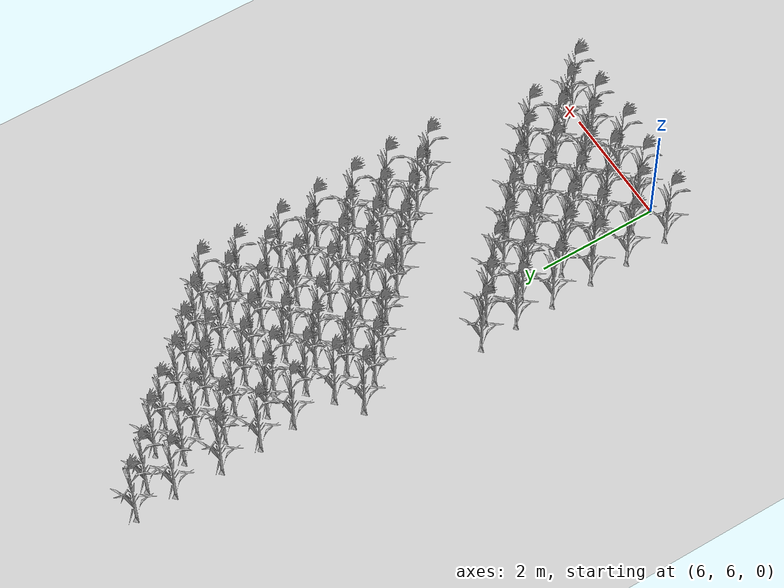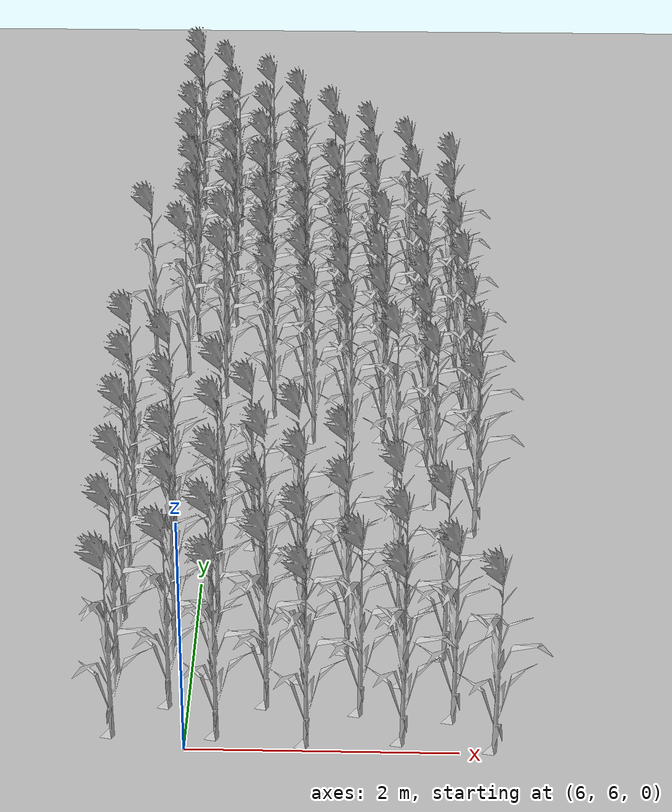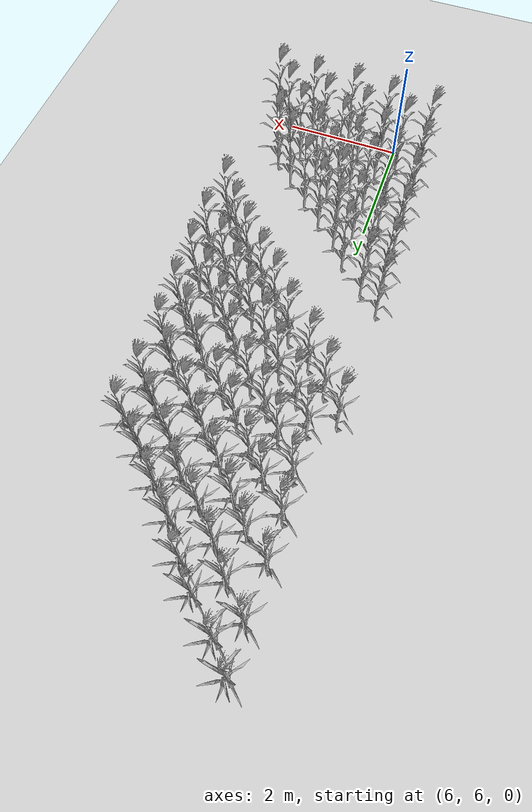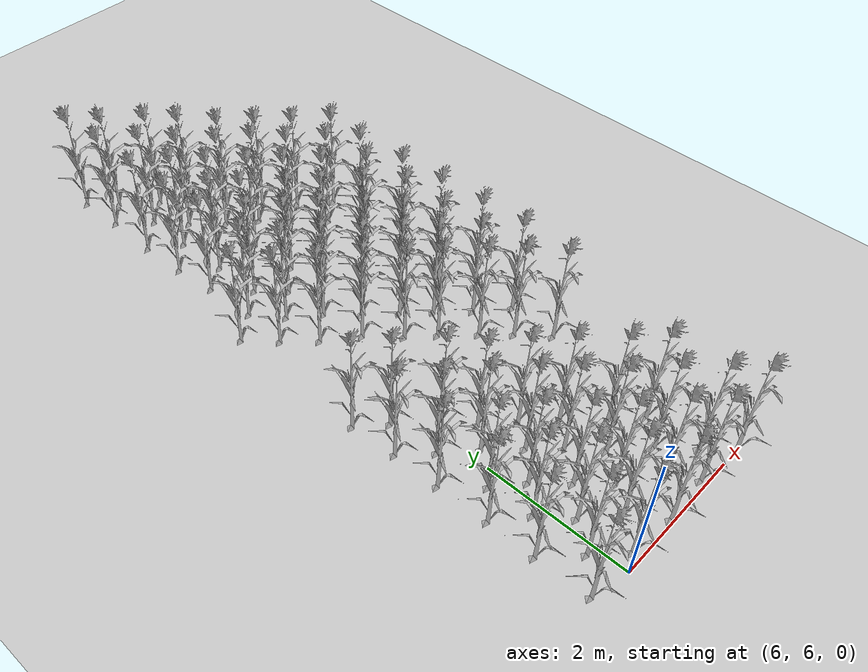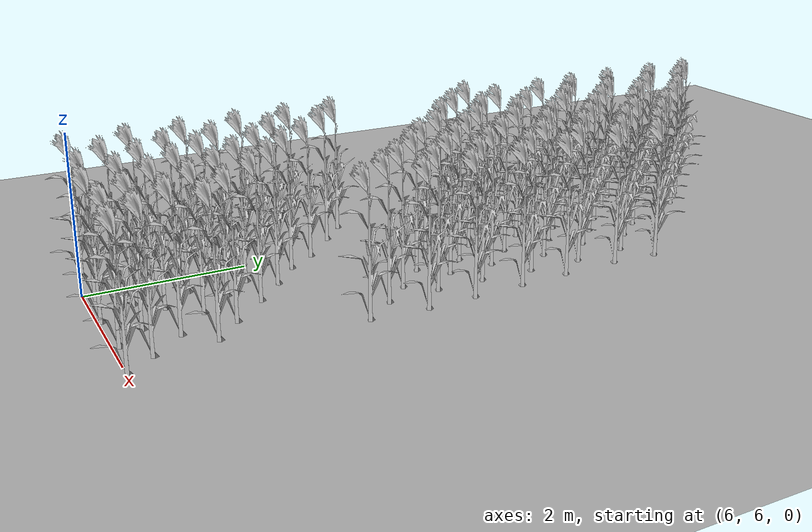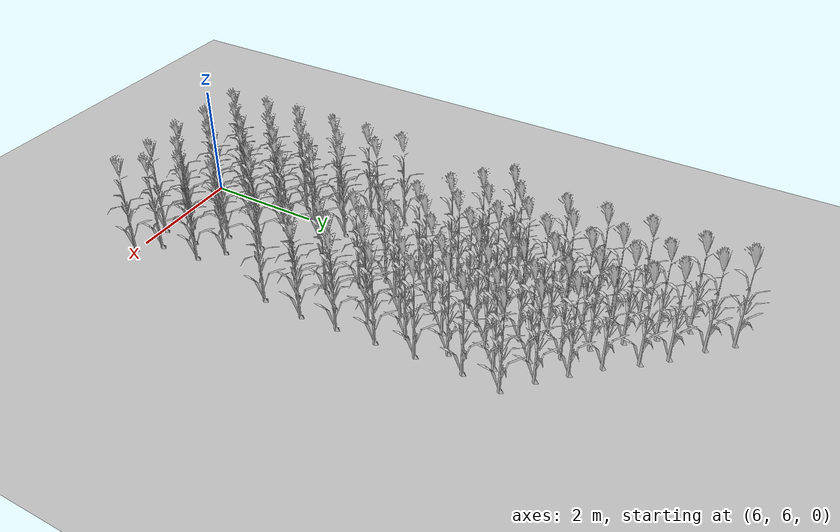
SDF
<sdf version="1.7">
 <world name="farmland_world">
  <model name="ground_plane">
   <static>1</static>
   <link name="link">
    <collision name="collision">
     <geometry><plane><normal>0 0 1</normal><size>40.0 40.0</size></plane></geometry>
     <surface><friction><ode><mu>100</mu><mu2>50</mu2></ode></friction></surface>
    </collision>
    <visual name="visual">
     <cast_shadows>0</cast_shadows>
     <geometry><plane><normal>0 0 1</normal><size>40.0 40.0</size></plane></geometry>
     <material>
      <script><uri>file://media/materials/scripts/gazebo.material</uri><name>Gazebo/Grey</name></script>
     </material>
    </visual>
   </link>
  </model>
  <model name="tree_3_355">
   <static>1</static>
   <link name="link">
    <collision name="collision">
     <geometry><mesh><uri>model://Corn_low_poly/corn.obj</uri><scale>1 1 1</scale></mesh></geometry>
     <surface><friction><ode><mu>100</mu><mu2>50</mu2></ode></friction></surface>
    </collision>
    <visual name="visual">
     <geometry><mesh><uri>model://Corn_low_poly/corn.obj</uri><scale>1 1 1</scale></mesh></geometry>
    </visual>
   </link>
   <pose>5.471694476453134 6.14355380450769 0 0 0 0</pose>
  </model>
  <model name="tree_3_399">
   <static>1</static>
   <link name="link">
    <collision name="collision">
     <geometry><mesh><uri>model://Corn_low_poly/corn.obj</uri><scale>1 1 1</scale></mesh></geometry>
     <surface><friction><ode><mu>100</mu><mu2>50</mu2></ode></friction></surface>
    </collision>
    <visual name="visual">
     <geometry><mesh><uri>model://Corn_low_poly/corn.obj</uri><scale>1 1 1</scale></mesh></geometry>
    </visual>
   </link>
   <pose>6.235995083051954 6.136987099620361 0 0 0 0</pose>
  </model>
  <model name="tree_3_400">
   <static>1</static>
   <link name="link">
    <collision name="collision">
     <geometry><mesh><uri>model://Corn_low_poly/corn.obj</uri><scale>1 1 1</scale></mesh></geometry>
     <surface><friction><ode><mu>100</mu><mu2>50</mu2></ode></friction></surface>
    </collision>
    <visual name="visual">
     <geometry><mesh><uri>model://Corn_low_poly/corn.obj</uri><scale>1 1 1</scale></mesh></geometry>
    </visual>
   </link>
   <pose>5.865005766384051 6.483302740162378 0 0 0 0</pose>
  </model>
  <model name="tree_3_401">
   <static>1</static>
   <link name="link">
    <collision name="collision">
     <geometry><mesh><uri>model://Corn_low_poly/corn.obj</uri><scale>1 1 1</scale></mesh></geometry>
     <surface><friction><ode><mu>100</mu><mu2>50</mu2></ode></friction></surface>
    </collision>
    <visual name="visual">
     <geometry><mesh><uri>model://Corn_low_poly/corn.obj</uri><scale>1 1 1</scale></mesh></geometry>
    </visual>
   </link>
   <pose>5.439554193803803 6.883054392395736 0 0 0 0</pose>
  </model>
  <model name="tree_3_443">
   <static>1</static>
   <link name="link">
    <collision name="collision">
     <geometry><mesh><uri>model://Corn_low_poly/corn.obj</uri><scale>1 1 1</scale></mesh></geometry>
     <surface><friction><ode><mu>100</mu><mu2>50</mu2></ode></friction></surface>
    </collision>
    <visual name="visual">
     <geometry><mesh><uri>model://Corn_low_poly/corn.obj</uri><scale>1 1 1</scale></mesh></geometry>
    </visual>
   </link>
   <pose>6.89482334576149 6.05714807103807 0 0 0 0</pose>
  </model>
  <model name="tree_3_444">
   <static>1</static>
   <link name="link">
    <collision name="collision">
     <geometry><mesh><uri>model://Corn_low_poly/corn.obj</uri><scale>1 1 1</scale></mesh></geometry>
     <surface><friction><ode><mu>100</mu><mu2>50</mu2></ode></friction></surface>
    </collision>
    <visual name="visual">
     <geometry><mesh><uri>model://Corn_low_poly/corn.obj</uri><scale>1 1 1</scale></mesh></geometry>
    </visual>
   </link>
   <pose>6.590228211085684 6.492187985608094 0 0 0 0</pose>
  </model>
  <model name="tree_3_445">
   <static>1</static>
   <link name="link">
    <collision name="collision">
     <geometry><mesh><uri>model://Corn_low_poly/corn.obj</uri><scale>1 1 1</scale></mesh></geometry>
     <surface><friction><ode><mu>100</mu><mu2>50</mu2></ode></friction></surface>
    </collision>
    <visual name="visual">
     <geometry><mesh><uri>model://Corn_low_poly/corn.obj</uri><scale>1 1 1</scale></mesh></geometry>
    </visual>
   </link>
   <pose>6.163290914897443 6.837217003719001 0 0 0 0</pose>
  </model>
  <model name="tree_3_446">
   <static>1</static>
   <link name="link">
    <collision name="collision">
     <geometry><mesh><uri>model://Corn_low_poly/corn.obj</uri><scale>1 1 1</scale></mesh></geometry>
     <surface><friction><ode><mu>100</mu><mu2>50</mu2></ode></friction></surface>
    </collision>
    <visual name="visual">
     <geometry><mesh><uri>model://Corn_low_poly/corn.obj</uri><scale>1 1 1</scale></mesh></geometry>
    </visual>
   </link>
   <pose>5.8521127208860815 7.230890663182897 0 0 0 0</pose>
  </model>
  <model name="tree_3_447">
   <static>1</static>
   <link name="link">
    <collision name="collision">
     <geometry><mesh><uri>model://Corn_low_poly/corn.obj</uri><scale>1 1 1</scale></mesh></geometry>
     <surface><friction><ode><mu>100</mu><mu2>50</mu2></ode></friction></surface>
    </collision>
    <visual name="visual">
     <geometry><mesh><uri>model://Corn_low_poly/corn.obj</uri><scale>1 1 1</scale></mesh></geometry>
    </visual>
   </link>
   <pose>5.432848859383742 7.550476239726102 0 0 0 0</pose>
  </model>
  <model name="tree_3_487">
   <static>1</static>
   <link name="link">
    <collision name="collision">
     <geometry><mesh><uri>model://Corn_low_poly/corn.obj</uri><scale>1 1 1</scale></mesh></geometry>
     <surface><friction><ode><mu>100</mu><mu2>50</mu2></ode></friction></surface>
    </collision>
    <visual name="visual">
     <geometry><mesh><uri>model://Corn_low_poly/corn.obj</uri><scale>1 1 1</scale></mesh></geometry>
    </visual>
   </link>
   <pose>7.594508371308746 6.0977253387361845 0 0 0 0</pose>
  </model>
  <model name="tree_3_488">
   <static>1</static>
   <link name="link">
    <collision name="collision">
     <geometry><mesh><uri>model://Corn_low_poly/corn.obj</uri><scale>1 1 1</scale></mesh></geometry>
     <surface><friction><ode><mu>100</mu><mu2>50</mu2></ode></friction></surface>
    </collision>
    <visual name="visual">
     <geometry><mesh><uri>model://Corn_low_poly/corn.obj</uri><scale>1 1 1</scale></mesh></geometry>
    </visual>
   </link>
   <pose>7.285591513165127 6.420399076129531 0 0 0 0</pose>
  </model>
  <model name="tree_3_489">
   <static>1</static>
   <link name="link">
    <collision name="collision">
     <geometry><mesh><uri>model://Corn_low_poly/corn.obj</uri><scale>1 1 1</scale></mesh></geometry>
     <surface><friction><ode><mu>100</mu><mu2>50</mu2></ode></friction></surface>
    </collision>
    <visual name="visual">
     <geometry><mesh><uri>model://Corn_low_poly/corn.obj</uri><scale>1 1 1</scale></mesh></geometry>
    </visual>
   </link>
   <pose>6.857310512107202 6.792035577497284 0 0 0 0</pose>
  </model>
  <model name="tree_3_490">
   <static>1</static>
   <link name="link">
    <collision name="collision">
     <geometry><mesh><uri>model://Corn_low_poly/corn.obj</uri><scale>1 1 1</scale></mesh></geometry>
     <surface><friction><ode><mu>100</mu><mu2>50</mu2></ode></friction></surface>
    </collision>
    <visual name="visual">
     <geometry><mesh><uri>model://Corn_low_poly/corn.obj</uri><scale>1 1 1</scale></mesh></geometry>
    </visual>
   </link>
   <pose>6.52730941569315 7.155594912537985 0 0 0 0</pose>
  </model>
  <model name="tree_3_491">
   <static>1</static>
   <link name="link">
    <collision name="collision">
     <geometry><mesh><uri>model://Corn_low_poly/corn.obj</uri><scale>1 1 1</scale></mesh></geometry>
     <surface><friction><ode><mu>100</mu><mu2>50</mu2></ode></friction></surface>
    </collision>
    <visual name="visual">
     <geometry><mesh><uri>model://Corn_low_poly/corn.obj</uri><scale>1 1 1</scale></mesh></geometry>
    </visual>
   </link>
   <pose>6.170079203827628 7.544089877313549 0 0 0 0</pose>
  </model>
  <model name="tree_3_492">
   <static>1</static>
   <link name="link">
    <collision name="collision">
     <geometry><mesh><uri>model://Corn_low_poly/corn.obj</uri><scale>1 1 1</scale></mesh></geometry>
     <surface><friction><ode><mu>100</mu><mu2>50</mu2></ode></friction></surface>
    </collision>
    <visual name="visual">
     <geometry><mesh><uri>model://Corn_low_poly/corn.obj</uri><scale>1 1 1</scale></mesh></geometry>
    </visual>
   </link>
   <pose>5.798276590131924 7.841730784865423 0 0 0 0</pose>
  </model>
  <model name="tree_3_493">
   <static>1</static>
   <link name="link">
    <collision name="collision">
     <geometry><mesh><uri>model://Corn_low_poly/corn.obj</uri><scale>1 1 1</scale></mesh></geometry>
     <surface><friction><ode><mu>100</mu><mu2>50</mu2></ode></friction></surface>
    </collision>
    <visual name="visual">
     <geometry><mesh><uri>model://Corn_low_poly/corn.obj</uri><scale>1 1 1</scale></mesh></geometry>
    </visual>
   </link>
   <pose>5.400741873745754 8.277862308821367 0 0 0 0</pose>
  </model>
  <model name="tree_3_531">
   <static>1</static>
   <link name="link">
    <collision name="collision">
     <geometry><mesh><uri>model://Corn_low_poly/corn.obj</uri><scale>1 1 1</scale></mesh></geometry>
     <surface><friction><ode><mu>100</mu><mu2>50</mu2></ode></friction></surface>
    </collision>
    <visual name="visual">
     <geometry><mesh><uri>model://Corn_low_poly/corn.obj</uri><scale>1 1 1</scale></mesh></geometry>
    </visual>
   </link>
   <pose>8.263007438001093 6.024265239351166 0 0 0 0</pose>
  </model>
  <model name="tree_3_532">
   <static>1</static>
   <link name="link">
    <collision name="collision">
     <geometry><mesh><uri>model://Corn_low_poly/corn.obj</uri><scale>1 1 1</scale></mesh></geometry>
     <surface><friction><ode><mu>100</mu><mu2>50</mu2></ode></friction></surface>
    </collision>
    <visual name="visual">
     <geometry><mesh><uri>model://Corn_low_poly/corn.obj</uri><scale>1 1 1</scale></mesh></geometry>
    </visual>
   </link>
   <pose>7.975446138098593 6.35846957469367 0 0 0 0</pose>
  </model>
  <model name="tree_3_533">
   <static>1</static>
   <link name="link">
    <collision name="collision">
     <geometry><mesh><uri>model://Corn_low_poly/corn.obj</uri><scale>1 1 1</scale></mesh></geometry>
     <surface><friction><ode><mu>100</mu><mu2>50</mu2></ode></friction></surface>
    </collision>
    <visual name="visual">
     <geometry><mesh><uri>model://Corn_low_poly/corn.obj</uri><scale>1 1 1</scale></mesh></geometry>
    </visual>
   </link>
   <pose>7.6143051767600145 6.760402152950665 0 0 0 0</pose>
  </model>
  <model name="tree_3_534">
   <static>1</static>
   <link name="link">
    <collision name="collision">
     <geometry><mesh><uri>model://Corn_low_poly/corn.obj</uri><scale>1 1 1</scale></mesh></geometry>
     <surface><friction><ode><mu>100</mu><mu2>50</mu2></ode></friction></surface>
    </collision>
    <visual name="visual">
     <geometry><mesh><uri>model://Corn_low_poly/corn.obj</uri><scale>1 1 1</scale></mesh></geometry>
    </visual>
   </link>
   <pose>7.182612932854334 7.148068096172713 0 0 0 0</pose>
  </model>
  <model name="tree_3_535">
   <static>1</static>
   <link name="link">
    <collision name="collision">
     <geometry><mesh><uri>model://Corn_low_poly/corn.obj</uri><scale>1 1 1</scale></mesh></geometry>
     <surface><friction><ode><mu>100</mu><mu2>50</mu2></ode></friction></surface>
    </collision>
    <visual name="visual">
     <geometry><mesh><uri>model://Corn_low_poly/corn.obj</uri><scale>1 1 1</scale></mesh></geometry>
    </visual>
   </link>
   <pose>6.844057753489847 7.531820341324307 0 0 0 0</pose>
  </model>
  <model name="tree_3_536">
   <static>1</static>
   <link name="link">
    <collision name="collision">
     <geometry><mesh><uri>model://Corn_low_poly/corn.obj</uri><scale>1 1 1</scale></mesh></geometry>
     <surface><friction><ode><mu>100</mu><mu2>50</mu2></ode></friction></surface>
    </collision>
    <visual name="visual">
     <geometry><mesh><uri>model://Corn_low_poly/corn.obj</uri><scale>1 1 1</scale></mesh></geometry>
    </visual>
   </link>
   <pose>6.533425087771486 7.869975667730941 0 0 0 0</pose>
  </model>
  <model name="tree_3_537">
   <static>1</static>
   <link name="link">
    <collision name="collision">
     <geometry><mesh><uri>model://Corn_low_poly/corn.obj</uri><scale>1 1 1</scale></mesh></geometry>
     <surface><friction><ode><mu>100</mu><mu2>50</mu2></ode></friction></surface>
    </collision>
    <visual name="visual">
     <geometry><mesh><uri>model://Corn_low_poly/corn.obj</uri><scale>1 1 1</scale></mesh></geometry>
    </visual>
   </link>
   <pose>6.148371712868487 8.248745050336604 0 0 0 0</pose>
  </model>
  <model name="tree_3_538">
   <static>1</static>
   <link name="link">
    <collision name="collision">
     <geometry><mesh><uri>model://Corn_low_poly/corn.obj</uri><scale>1 1 1</scale></mesh></geometry>
     <surface><friction><ode><mu>100</mu><mu2>50</mu2></ode></friction></surface>
    </collision>
    <visual name="visual">
     <geometry><mesh><uri>model://Corn_low_poly/corn.obj</uri><scale>1 1 1</scale></mesh></geometry>
    </visual>
   </link>
   <pose>5.751576541310999 8.600007839398152 0 0 0 0</pose>
  </model>
  <model name="tree_3_539">
   <static>1</static>
   <link name="link">
    <collision name="collision">
     <geometry><mesh><uri>model://Corn_low_poly/corn.obj</uri><scale>1 1 1</scale></mesh></geometry>
     <surface><friction><ode><mu>100</mu><mu2>50</mu2></ode></friction></surface>
    </collision>
    <visual name="visual">
     <geometry><mesh><uri>model://Corn_low_poly/corn.obj</uri><scale>1 1 1</scale></mesh></geometry>
    </visual>
   </link>
   <pose>5.384534908041113 8.945540544869322 0 0 0 0</pose>
  </model>
  <model name="tree_3_578">
   <static>1</static>
   <link name="link">
    <collision name="collision">
     <geometry><mesh><uri>model://Corn_low_poly/corn.obj</uri><scale>1 1 1</scale></mesh></geometry>
     <surface><friction><ode><mu>100</mu><mu2>50</mu2></ode></friction></surface>
    </collision>
    <visual name="visual">
     <geometry><mesh><uri>model://Corn_low_poly/corn.obj</uri><scale>1 1 1</scale></mesh></geometry>
    </visual>
   </link>
   <pose>7.9303297653372615 7.086207382358964 0 0 0 0</pose>
  </model>
  <model name="tree_3_579">
   <static>1</static>
   <link name="link">
    <collision name="collision">
     <geometry><mesh><uri>model://Corn_low_poly/corn.obj</uri><scale>1 1 1</scale></mesh></geometry>
     <surface><friction><ode><mu>100</mu><mu2>50</mu2></ode></friction></surface>
    </collision>
    <visual name="visual">
     <geometry><mesh><uri>model://Corn_low_poly/corn.obj</uri><scale>1 1 1</scale></mesh></geometry>
    </visual>
   </link>
   <pose>7.580579248094901 7.405266585083556 0 0 0 0</pose>
  </model>
  <model name="tree_3_580">
   <static>1</static>
   <link name="link">
    <collision name="collision">
     <geometry><mesh><uri>model://Corn_low_poly/corn.obj</uri><scale>1 1 1</scale></mesh></geometry>
     <surface><friction><ode><mu>100</mu><mu2>50</mu2></ode></friction></surface>
    </collision>
    <visual name="visual">
     <geometry><mesh><uri>model://Corn_low_poly/corn.obj</uri><scale>1 1 1</scale></mesh></geometry>
    </visual>
   </link>
   <pose>7.163872858023404 7.838276291657725 0 0 0 0</pose>
  </model>
  <model name="tree_3_581">
   <static>1</static>
   <link name="link">
    <collision name="collision">
     <geometry><mesh><uri>model://Corn_low_poly/corn.obj</uri><scale>1 1 1</scale></mesh></geometry>
     <surface><friction><ode><mu>100</mu><mu2>50</mu2></ode></friction></surface>
    </collision>
    <visual name="visual">
     <geometry><mesh><uri>model://Corn_low_poly/corn.obj</uri><scale>1 1 1</scale></mesh></geometry>
    </visual>
   </link>
   <pose>6.789975333410983 8.18729885335023 0 0 0 0</pose>
  </model>
  <model name="tree_3_582">
   <static>1</static>
   <link name="link">
    <collision name="collision">
     <geometry><mesh><uri>model://Corn_low_poly/corn.obj</uri><scale>1 1 1</scale></mesh></geometry>
     <surface><friction><ode><mu>100</mu><mu2>50</mu2></ode></friction></surface>
    </collision>
    <visual name="visual">
     <geometry><mesh><uri>model://Corn_low_poly/corn.obj</uri><scale>1 1 1</scale></mesh></geometry>
    </visual>
   </link>
   <pose>6.407608446807056 8.51307476225201 0 0 0 0</pose>
  </model>
  <model name="tree_3_583">
   <static>1</static>
   <link name="link">
    <collision name="collision">
     <geometry><mesh><uri>model://Corn_low_poly/corn.obj</uri><scale>1 1 1</scale></mesh></geometry>
     <surface><friction><ode><mu>100</mu><mu2>50</mu2></ode></friction></surface>
    </collision>
    <visual name="visual">
     <geometry><mesh><uri>model://Corn_low_poly/corn.obj</uri><scale>1 1 1</scale></mesh></geometry>
    </visual>
   </link>
   <pose>6.1387058412705775 8.88055569010794 0 0 0 0</pose>
  </model>
  <model name="tree_3_584">
   <static>1</static>
   <link name="link">
    <collision name="collision">
     <geometry><mesh><uri>model://Corn_low_poly/corn.obj</uri><scale>1 1 1</scale></mesh></geometry>
     <surface><friction><ode><mu>100</mu><mu2>50</mu2></ode></friction></surface>
    </collision>
    <visual name="visual">
     <geometry><mesh><uri>model://Corn_low_poly/corn.obj</uri><scale>1 1 1</scale></mesh></geometry>
    </visual>
   </link>
   <pose>5.685108797447802 9.301583182413548 0 0 0 0</pose>
  </model>
  <model name="tree_3_585">
   <static>1</static>
   <link name="link">
    <collision name="collision">
     <geometry><mesh><uri>model://Corn_low_poly/corn.obj</uri><scale>1 1 1</scale></mesh></geometry>
     <surface><friction><ode><mu>100</mu><mu2>50</mu2></ode></friction></surface>
    </collision>
    <visual name="visual">
     <geometry><mesh><uri>model://Corn_low_poly/corn.obj</uri><scale>1 1 1</scale></mesh></geometry>
    </visual>
   </link>
   <pose>5.33450652721712 9.6081968097884 0 0 0 0</pose>
  </model>
  <model name="tree_3_633">
   <static>1</static>
   <link name="link">
    <collision name="collision">
     <geometry><mesh><uri>model://Corn_low_poly/corn.obj</uri><scale>1 1 1</scale></mesh></geometry>
     <surface><friction><ode><mu>100</mu><mu2>50</mu2></ode></friction></surface>
    </collision>
    <visual name="visual">
     <geometry><mesh><uri>model://Corn_low_poly/corn.obj</uri><scale>1 1 1</scale></mesh></geometry>
    </visual>
   </link>
   <pose>8.232710485984626 8.737491411018663 0 0 0 0</pose>
  </model>
  <model name="tree_3_634">
   <static>1</static>
   <link name="link">
    <collision name="collision">
     <geometry><mesh><uri>model://Corn_low_poly/corn.obj</uri><scale>1 1 1</scale></mesh></geometry>
     <surface><friction><ode><mu>100</mu><mu2>50</mu2></ode></friction></surface>
    </collision>
    <visual name="visual">
     <geometry><mesh><uri>model://Corn_low_poly/corn.obj</uri><scale>1 1 1</scale></mesh></geometry>
    </visual>
   </link>
   <pose>7.90488833929743 9.134743534265912 0 0 0 0</pose>
  </model>
  <model name="tree_3_635">
   <static>1</static>
   <link name="link">
    <collision name="collision">
     <geometry><mesh><uri>model://Corn_low_poly/corn.obj</uri><scale>1 1 1</scale></mesh></geometry>
     <surface><friction><ode><mu>100</mu><mu2>50</mu2></ode></friction></surface>
    </collision>
    <visual name="visual">
     <geometry><mesh><uri>model://Corn_low_poly/corn.obj</uri><scale>1 1 1</scale></mesh></geometry>
    </visual>
   </link>
   <pose>7.586002379757005 9.475021441311359 0 0 0 0</pose>
  </model>
  <model name="tree_3_636">
   <static>1</static>
   <link name="link">
    <collision name="collision">
     <geometry><mesh><uri>model://Corn_low_poly/corn.obj</uri><scale>1 1 1</scale></mesh></geometry>
     <surface><friction><ode><mu>100</mu><mu2>50</mu2></ode></friction></surface>
    </collision>
    <visual name="visual">
     <geometry><mesh><uri>model://Corn_low_poly/corn.obj</uri><scale>1 1 1</scale></mesh></geometry>
    </visual>
   </link>
   <pose>7.1982926108926675 9.859354686523965 0 0 0 0</pose>
  </model>
  <model name="tree_3_637">
   <static>1</static>
   <link name="link">
    <collision name="collision">
     <geometry><mesh><uri>model://Corn_low_poly/corn.obj</uri><scale>1 1 1</scale></mesh></geometry>
     <surface><friction><ode><mu>100</mu><mu2>50</mu2></ode></friction></surface>
    </collision>
    <visual name="visual">
     <geometry><mesh><uri>model://Corn_low_poly/corn.obj</uri><scale>1 1 1</scale></mesh></geometry>
    </visual>
   </link>
   <pose>6.867236721220703 10.156610786514221 0 0 0 0</pose>
  </model>
  <model name="tree_3_638">
   <static>1</static>
   <link name="link">
    <collision name="collision">
     <geometry><mesh><uri>model://Corn_low_poly/corn.obj</uri><scale>1 1 1</scale></mesh></geometry>
     <surface><friction><ode><mu>100</mu><mu2>50</mu2></ode></friction></surface>
    </collision>
    <visual name="visual">
     <geometry><mesh><uri>model://Corn_low_poly/corn.obj</uri><scale>1 1 1</scale></mesh></geometry>
    </visual>
   </link>
   <pose>6.501411865999085 10.57374916205399 0 0 0 0</pose>
  </model>
  <model name="tree_3_639">
   <static>1</static>
   <link name="link">
    <collision name="collision">
     <geometry><mesh><uri>model://Corn_low_poly/corn.obj</uri><scale>1 1 1</scale></mesh></geometry>
     <surface><friction><ode><mu>100</mu><mu2>50</mu2></ode></friction></surface>
    </collision>
    <visual name="visual">
     <geometry><mesh><uri>model://Corn_low_poly/corn.obj</uri><scale>1 1 1</scale></mesh></geometry>
    </visual>
   </link>
   <pose>6.050639264853718 10.914165163602688 0 0 0 0</pose>
  </model>
  <model name="tree_3_640">
   <static>1</static>
   <link name="link">
    <collision name="collision">
     <geometry><mesh><uri>model://Corn_low_poly/corn.obj</uri><scale>1 1 1</scale></mesh></geometry>
     <surface><friction><ode><mu>100</mu><mu2>50</mu2></ode></friction></surface>
    </collision>
    <visual name="visual">
     <geometry><mesh><uri>model://Corn_low_poly/corn.obj</uri><scale>1 1 1</scale></mesh></geometry>
    </visual>
   </link>
   <pose>5.678239367426994 11.283352495747836 0 0 0 0</pose>
  </model>
  <model name="tree_3_641">
   <static>1</static>
   <link name="link">
    <collision name="collision">
     <geometry><mesh><uri>model://Corn_low_poly/corn.obj</uri><scale>1 1 1</scale></mesh></geometry>
     <surface><friction><ode><mu>100</mu><mu2>50</mu2></ode></friction></surface>
    </collision>
    <visual name="visual">
     <geometry><mesh><uri>model://Corn_low_poly/corn.obj</uri><scale>1 1 1</scale></mesh></geometry>
    </visual>
   </link>
   <pose>5.3396574129890135 11.674180198341444 0 0 0 0</pose>
  </model>
  <model name="tree_3_678">
   <static>1</static>
   <link name="link">
    <collision name="collision">
     <geometry><mesh><uri>model://Corn_low_poly/corn.obj</uri><scale>1 1 1</scale></mesh></geometry>
     <surface><friction><ode><mu>100</mu><mu2>50</mu2></ode></friction></surface>
    </collision>
    <visual name="visual">
     <geometry><mesh><uri>model://Corn_low_poly/corn.obj</uri><scale>1 1 1</scale></mesh></geometry>
    </visual>
   </link>
   <pose>8.274675517356124 9.458944543701993 0 0 0 0</pose>
  </model>
  <model name="tree_3_679">
   <static>1</static>
   <link name="link">
    <collision name="collision">
     <geometry><mesh><uri>model://Corn_low_poly/corn.obj</uri><scale>1 1 1</scale></mesh></geometry>
     <surface><friction><ode><mu>100</mu><mu2>50</mu2></ode></friction></surface>
    </collision>
    <visual name="visual">
     <geometry><mesh><uri>model://Corn_low_poly/corn.obj</uri><scale>1 1 1</scale></mesh></geometry>
    </visual>
   </link>
   <pose>7.858216426828278 9.807031009503156 0 0 0 0</pose>
  </model>
  <model name="tree_3_680">
   <static>1</static>
   <link name="link">
    <collision name="collision">
     <geometry><mesh><uri>model://Corn_low_poly/corn.obj</uri><scale>1 1 1</scale></mesh></geometry>
     <surface><friction><ode><mu>100</mu><mu2>50</mu2></ode></friction></surface>
    </collision>
    <visual name="visual">
     <geometry><mesh><uri>model://Corn_low_poly/corn.obj</uri><scale>1 1 1</scale></mesh></geometry>
    </visual>
   </link>
   <pose>7.478380787068157 10.18168321376098 0 0 0 0</pose>
  </model>
  <model name="tree_3_681">
   <static>1</static>
   <link name="link">
    <collision name="collision">
     <geometry><mesh><uri>model://Corn_low_poly/corn.obj</uri><scale>1 1 1</scale></mesh></geometry>
     <surface><friction><ode><mu>100</mu><mu2>50</mu2></ode></friction></surface>
    </collision>
    <visual name="visual">
     <geometry><mesh><uri>model://Corn_low_poly/corn.obj</uri><scale>1 1 1</scale></mesh></geometry>
    </visual>
   </link>
   <pose>7.147992663038846 10.49862164759926 0 0 0 0</pose>
  </model>
  <model name="tree_3_682">
   <static>1</static>
   <link name="link">
    <collision name="collision">
     <geometry><mesh><uri>model://Corn_low_poly/corn.obj</uri><scale>1 1 1</scale></mesh></geometry>
     <surface><friction><ode><mu>100</mu><mu2>50</mu2></ode></friction></surface>
    </collision>
    <visual name="visual">
     <geometry><mesh><uri>model://Corn_low_poly/corn.obj</uri><scale>1 1 1</scale></mesh></geometry>
    </visual>
   </link>
   <pose>6.777076923884923 10.85455022685931 0 0 0 0</pose>
  </model>
  <model name="tree_3_683">
   <static>1</static>
   <link name="link">
    <collision name="collision">
     <geometry><mesh><uri>model://Corn_low_poly/corn.obj</uri><scale>1 1 1</scale></mesh></geometry>
     <surface><friction><ode><mu>100</mu><mu2>50</mu2></ode></friction></surface>
    </collision>
    <visual name="visual">
     <geometry><mesh><uri>model://Corn_low_poly/corn.obj</uri><scale>1 1 1</scale></mesh></geometry>
    </visual>
   </link>
   <pose>6.422934925065798 11.228667612488005 0 0 0 0</pose>
  </model>
  <model name="tree_3_684">
   <static>1</static>
   <link name="link">
    <collision name="collision">
     <geometry><mesh><uri>model://Corn_low_poly/corn.obj</uri><scale>1 1 1</scale></mesh></geometry>
     <surface><friction><ode><mu>100</mu><mu2>50</mu2></ode></friction></surface>
    </collision>
    <visual name="visual">
     <geometry><mesh><uri>model://Corn_low_poly/corn.obj</uri><scale>1 1 1</scale></mesh></geometry>
    </visual>
   </link>
   <pose>6.0354638034887245 11.549144392583752 0 0 0 0</pose>
  </model>
  <model name="tree_3_685">
   <static>1</static>
   <link name="link">
    <collision name="collision">
     <geometry><mesh><uri>model://Corn_low_poly/corn.obj</uri><scale>1 1 1</scale></mesh></geometry>
     <surface><friction><ode><mu>100</mu><mu2>50</mu2></ode></friction></surface>
    </collision>
    <visual name="visual">
     <geometry><mesh><uri>model://Corn_low_poly/corn.obj</uri><scale>1 1 1</scale></mesh></geometry>
    </visual>
   </link>
   <pose>5.725669077943001 11.954173087832212 0 0 0 0</pose>
  </model>
  <model name="tree_3_722">
   <static>1</static>
   <link name="link">
    <collision name="collision">
     <geometry><mesh><uri>model://Corn_low_poly/corn.obj</uri><scale>1 1 1</scale></mesh></geometry>
     <surface><friction><ode><mu>100</mu><mu2>50</mu2></ode></friction></surface>
    </collision>
    <visual name="visual">
     <geometry><mesh><uri>model://Corn_low_poly/corn.obj</uri><scale>1 1 1</scale></mesh></geometry>
    </visual>
   </link>
   <pose>8.236373425336918 10.09413176173976 0 0 0 0</pose>
  </model>
  <model name="tree_3_723">
   <static>1</static>
   <link name="link">
    <collision name="collision">
     <geometry><mesh><uri>model://Corn_low_poly/corn.obj</uri><scale>1 1 1</scale></mesh></geometry>
     <surface><friction><ode><mu>100</mu><mu2>50</mu2></ode></friction></surface>
    </collision>
    <visual name="visual">
     <geometry><mesh><uri>model://Corn_low_poly/corn.obj</uri><scale>1 1 1</scale></mesh></geometry>
    </visual>
   </link>
   <pose>7.843746484447028 10.423593885331728 0 0 0 0</pose>
  </model>
  <model name="tree_3_724">
   <static>1</static>
   <link name="link">
    <collision name="collision">
     <geometry><mesh><uri>model://Corn_low_poly/corn.obj</uri><scale>1 1 1</scale></mesh></geometry>
     <surface><friction><ode><mu>100</mu><mu2>50</mu2></ode></friction></surface>
    </collision>
    <visual name="visual">
     <geometry><mesh><uri>model://Corn_low_poly/corn.obj</uri><scale>1 1 1</scale></mesh></geometry>
    </visual>
   </link>
   <pose>7.472513453084097 10.780797070553156 0 0 0 0</pose>
  </model>
  <model name="tree_3_725">
   <static>1</static>
   <link name="link">
    <collision name="collision">
     <geometry><mesh><uri>model://Corn_low_poly/corn.obj</uri><scale>1 1 1</scale></mesh></geometry>
     <surface><friction><ode><mu>100</mu><mu2>50</mu2></ode></friction></surface>
    </collision>
    <visual name="visual">
     <geometry><mesh><uri>model://Corn_low_poly/corn.obj</uri><scale>1 1 1</scale></mesh></geometry>
    </visual>
   </link>
   <pose>7.151067412704287 11.17079121655024 0 0 0 0</pose>
  </model>
  <model name="tree_3_726">
   <static>1</static>
   <link name="link">
    <collision name="collision">
     <geometry><mesh><uri>model://Corn_low_poly/corn.obj</uri><scale>1 1 1</scale></mesh></geometry>
     <surface><friction><ode><mu>100</mu><mu2>50</mu2></ode></friction></surface>
    </collision>
    <visual name="visual">
     <geometry><mesh><uri>model://Corn_low_poly/corn.obj</uri><scale>1 1 1</scale></mesh></geometry>
    </visual>
   </link>
   <pose>6.753417768359581 11.604140386425346 0 0 0 0</pose>
  </model>
  <model name="tree_3_727">
   <static>1</static>
   <link name="link">
    <collision name="collision">
     <geometry><mesh><uri>model://Corn_low_poly/corn.obj</uri><scale>1 1 1</scale></mesh></geometry>
     <surface><friction><ode><mu>100</mu><mu2>50</mu2></ode></friction></surface>
    </collision>
    <visual name="visual">
     <geometry><mesh><uri>model://Corn_low_poly/corn.obj</uri><scale>1 1 1</scale></mesh></geometry>
    </visual>
   </link>
   <pose>6.395754354781341 11.887812480322614 0 0 0 0</pose>
  </model>
  <model name="tree_3_728">
   <static>1</static>
   <link name="link">
    <collision name="collision">
     <geometry><mesh><uri>model://Corn_low_poly/corn.obj</uri><scale>1 1 1</scale></mesh></geometry>
     <surface><friction><ode><mu>100</mu><mu2>50</mu2></ode></friction></surface>
    </collision>
    <visual name="visual">
     <geometry><mesh><uri>model://Corn_low_poly/corn.obj</uri><scale>1 1 1</scale></mesh></geometry>
    </visual>
   </link>
   <pose>6.075359612778901 12.238462587719667 0 0 0 0</pose>
  </model>
  <model name="tree_3_729">
   <static>1</static>
   <link name="link">
    <collision name="collision">
     <geometry><mesh><uri>model://Corn_low_poly/corn.obj</uri><scale>1 1 1</scale></mesh></geometry>
     <surface><friction><ode><mu>100</mu><mu2>50</mu2></ode></friction></surface>
    </collision>
    <visual name="visual">
     <geometry><mesh><uri>model://Corn_low_poly/corn.obj</uri><scale>1 1 1</scale></mesh></geometry>
    </visual>
   </link>
   <pose>5.686802118528069 12.695705403550866 0 0 0 0</pose>
  </model>
  <model name="tree_3_765">
   <static>1</static>
   <link name="link">
    <collision name="collision">
     <geometry><mesh><uri>model://Corn_low_poly/corn.obj</uri><scale>1 1 1</scale></mesh></geometry>
     <surface><friction><ode><mu>100</mu><mu2>50</mu2></ode></friction></surface>
    </collision>
    <visual name="visual">
     <geometry><mesh><uri>model://Corn_low_poly/corn.obj</uri><scale>1 1 1</scale></mesh></geometry>
    </visual>
   </link>
   <pose>8.20475224559269 10.76862827113436 0 0 0 0</pose>
  </model>
  <model name="tree_3_766">
   <static>1</static>
   <link name="link">
    <collision name="collision">
     <geometry><mesh><uri>model://Corn_low_poly/corn.obj</uri><scale>1 1 1</scale></mesh></geometry>
     <surface><friction><ode><mu>100</mu><mu2>50</mu2></ode></friction></surface>
    </collision>
    <visual name="visual">
     <geometry><mesh><uri>model://Corn_low_poly/corn.obj</uri><scale>1 1 1</scale></mesh></geometry>
    </visual>
   </link>
   <pose>7.8711812822253036 11.11263319221747 0 0 0 0</pose>
  </model>
  <model name="tree_3_767">
   <static>1</static>
   <link name="link">
    <collision name="collision">
     <geometry><mesh><uri>model://Corn_low_poly/corn.obj</uri><scale>1 1 1</scale></mesh></geometry>
     <surface><friction><ode><mu>100</mu><mu2>50</mu2></ode></friction></surface>
    </collision>
    <visual name="visual">
     <geometry><mesh><uri>model://Corn_low_poly/corn.obj</uri><scale>1 1 1</scale></mesh></geometry>
    </visual>
   </link>
   <pose>7.513129569187407 11.542177628896846 0 0 0 0</pose>
  </model>
  <model name="tree_3_768">
   <static>1</static>
   <link name="link">
    <collision name="collision">
     <geometry><mesh><uri>model://Corn_low_poly/corn.obj</uri><scale>1 1 1</scale></mesh></geometry>
     <surface><friction><ode><mu>100</mu><mu2>50</mu2></ode></friction></surface>
    </collision>
    <visual name="visual">
     <geometry><mesh><uri>model://Corn_low_poly/corn.obj</uri><scale>1 1 1</scale></mesh></geometry>
    </visual>
   </link>
   <pose>7.0829652513685195 11.906316106276881 0 0 0 0</pose>
  </model>
  <model name="tree_3_769">
   <static>1</static>
   <link name="link">
    <collision name="collision">
     <geometry><mesh><uri>model://Corn_low_poly/corn.obj</uri><scale>1 1 1</scale></mesh></geometry>
     <surface><friction><ode><mu>100</mu><mu2>50</mu2></ode></friction></surface>
    </collision>
    <visual name="visual">
     <geometry><mesh><uri>model://Corn_low_poly/corn.obj</uri><scale>1 1 1</scale></mesh></geometry>
    </visual>
   </link>
   <pose>6.742335958233437 12.209071810558335 0 0 0 0</pose>
  </model>
  <model name="tree_3_770">
   <static>1</static>
   <link name="link">
    <collision name="collision">
     <geometry><mesh><uri>model://Corn_low_poly/corn.obj</uri><scale>1 1 1</scale></mesh></geometry>
     <surface><friction><ode><mu>100</mu><mu2>50</mu2></ode></friction></surface>
    </collision>
    <visual name="visual">
     <geometry><mesh><uri>model://Corn_low_poly/corn.obj</uri><scale>1 1 1</scale></mesh></geometry>
    </visual>
   </link>
   <pose>6.34554258347009 12.647842258708684 0 0 0 0</pose>
  </model>
  <model name="tree_3_771">
   <static>1</static>
   <link name="link">
    <collision name="collision">
     <geometry><mesh><uri>model://Corn_low_poly/corn.obj</uri><scale>1 1 1</scale></mesh></geometry>
     <surface><friction><ode><mu>100</mu><mu2>50</mu2></ode></friction></surface>
    </collision>
    <visual name="visual">
     <geometry><mesh><uri>model://Corn_low_poly/corn.obj</uri><scale>1 1 1</scale></mesh></geometry>
    </visual>
   </link>
   <pose>6.046322551575841 12.935298224185134 0 0 0 0</pose>
  </model>
  <model name="tree_3_772">
   <static>1</static>
   <link name="link">
    <collision name="collision">
     <geometry><mesh><uri>model://Corn_low_poly/corn.obj</uri><scale>1 1 1</scale></mesh></geometry>
     <surface><friction><ode><mu>100</mu><mu2>50</mu2></ode></friction></surface>
    </collision>
    <visual name="visual">
     <geometry><mesh><uri>model://Corn_low_poly/corn.obj</uri><scale>1 1 1</scale></mesh></geometry>
    </visual>
   </link>
   <pose>5.623168076145089 13.309726571187387 0 0 0 0</pose>
  </model>
  <model name="tree_3_807">
   <static>1</static>
   <link name="link">
    <collision name="collision">
     <geometry><mesh><uri>model://Corn_low_poly/corn.obj</uri><scale>1 1 1</scale></mesh></geometry>
     <surface><friction><ode><mu>100</mu><mu2>50</mu2></ode></friction></surface>
    </collision>
    <visual name="visual">
     <geometry><mesh><uri>model://Corn_low_poly/corn.obj</uri><scale>1 1 1</scale></mesh></geometry>
    </visual>
   </link>
   <pose>8.16598509372465 11.431157452739901 0 0 0 0</pose>
  </model>
  <model name="tree_3_808">
   <static>1</static>
   <link name="link">
    <collision name="collision">
     <geometry><mesh><uri>model://Corn_low_poly/corn.obj</uri><scale>1 1 1</scale></mesh></geometry>
     <surface><friction><ode><mu>100</mu><mu2>50</mu2></ode></friction></surface>
    </collision>
    <visual name="visual">
     <geometry><mesh><uri>model://Corn_low_poly/corn.obj</uri><scale>1 1 1</scale></mesh></geometry>
    </visual>
   </link>
   <pose>7.869680492763066 11.826243205254423 0 0 0 0</pose>
  </model>
  <model name="tree_3_809">
   <static>1</static>
   <link name="link">
    <collision name="collision">
     <geometry><mesh><uri>model://Corn_low_poly/corn.obj</uri><scale>1 1 1</scale></mesh></geometry>
     <surface><friction><ode><mu>100</mu><mu2>50</mu2></ode></friction></surface>
    </collision>
    <visual name="visual">
     <geometry><mesh><uri>model://Corn_low_poly/corn.obj</uri><scale>1 1 1</scale></mesh></geometry>
    </visual>
   </link>
   <pose>7.419751654465696 12.223725997946275 0 0 0 0</pose>
  </model>
  <model name="tree_3_810">
   <static>1</static>
   <link name="link">
    <collision name="collision">
     <geometry><mesh><uri>model://Corn_low_poly/corn.obj</uri><scale>1 1 1</scale></mesh></geometry>
     <surface><friction><ode><mu>100</mu><mu2>50</mu2></ode></friction></surface>
    </collision>
    <visual name="visual">
     <geometry><mesh><uri>model://Corn_low_poly/corn.obj</uri><scale>1 1 1</scale></mesh></geometry>
    </visual>
   </link>
   <pose>7.054905465689357 12.59602975800931 0 0 0 0</pose>
  </model>
  <model name="tree_3_811">
   <static>1</static>
   <link name="link">
    <collision name="collision">
     <geometry><mesh><uri>model://Corn_low_poly/corn.obj</uri><scale>1 1 1</scale></mesh></geometry>
     <surface><friction><ode><mu>100</mu><mu2>50</mu2></ode></friction></surface>
    </collision>
    <visual name="visual">
     <geometry><mesh><uri>model://Corn_low_poly/corn.obj</uri><scale>1 1 1</scale></mesh></geometry>
    </visual>
   </link>
   <pose>6.711125960637794 12.925949370702929 0 0 0 0</pose>
  </model>
  <model name="tree_3_812">
   <static>1</static>
   <link name="link">
    <collision name="collision">
     <geometry><mesh><uri>model://Corn_low_poly/corn.obj</uri><scale>1 1 1</scale></mesh></geometry>
     <surface><friction><ode><mu>100</mu><mu2>50</mu2></ode></friction></surface>
    </collision>
    <visual name="visual">
     <geometry><mesh><uri>model://Corn_low_poly/corn.obj</uri><scale>1 1 1</scale></mesh></geometry>
    </visual>
   </link>
   <pose>6.334916861725956 13.333447485131 0 0 0 0</pose>
  </model>
  <model name="tree_3_813">
   <static>1</static>
   <link name="link">
    <collision name="collision">
     <geometry><mesh><uri>model://Corn_low_poly/corn.obj</uri><scale>1 1 1</scale></mesh></geometry>
     <surface><friction><ode><mu>100</mu><mu2>50</mu2></ode></friction></surface>
    </collision>
    <visual name="visual">
     <geometry><mesh><uri>model://Corn_low_poly/corn.obj</uri><scale>1 1 1</scale></mesh></geometry>
    </visual>
   </link>
   <pose>6.009984951700232 13.689400980588827 0 0 0 0</pose>
  </model>
  <model name="tree_3_814">
   <static>1</static>
   <link name="link">
    <collision name="collision">
     <geometry><mesh><uri>model://Corn_low_poly/corn.obj</uri><scale>1 1 1</scale></mesh></geometry>
     <surface><friction><ode><mu>100</mu><mu2>50</mu2></ode></friction></surface>
    </collision>
    <visual name="visual">
     <geometry><mesh><uri>model://Corn_low_poly/corn.obj</uri><scale>1 1 1</scale></mesh></geometry>
    </visual>
   </link>
   <pose>5.596488742706105 13.988263065773056 0 0 0 0</pose>
  </model>
  <model name="tree_3_848">
   <static>1</static>
   <link name="link">
    <collision name="collision">
     <geometry><mesh><uri>model://Corn_low_poly/corn.obj</uri><scale>1 1 1</scale></mesh></geometry>
     <surface><friction><ode><mu>100</mu><mu2>50</mu2></ode></friction></surface>
    </collision>
    <visual name="visual">
     <geometry><mesh><uri>model://Corn_low_poly/corn.obj</uri><scale>1 1 1</scale></mesh></geometry>
    </visual>
   </link>
   <pose>8.131895333167135 12.19918956268082 0 0 0 0</pose>
  </model>
  <model name="tree_3_849">
   <static>1</static>
   <link name="link">
    <collision name="collision">
     <geometry><mesh><uri>model://Corn_low_poly/corn.obj</uri><scale>1 1 1</scale></mesh></geometry>
     <surface><friction><ode><mu>100</mu><mu2>50</mu2></ode></friction></surface>
    </collision>
    <visual name="visual">
     <geometry><mesh><uri>model://Corn_low_poly/corn.obj</uri><scale>1 1 1</scale></mesh></geometry>
    </visual>
   </link>
   <pose>7.807968714655462 12.54398565143424 0 0 0 0</pose>
  </model>
  <model name="tree_3_850">
   <static>1</static>
   <link name="link">
    <collision name="collision">
     <geometry><mesh><uri>model://Corn_low_poly/corn.obj</uri><scale>1 1 1</scale></mesh></geometry>
     <surface><friction><ode><mu>100</mu><mu2>50</mu2></ode></friction></surface>
    </collision>
    <visual name="visual">
     <geometry><mesh><uri>model://Corn_low_poly/corn.obj</uri><scale>1 1 1</scale></mesh></geometry>
    </visual>
   </link>
   <pose>7.408556683745859 12.91731667478071 0 0 0 0</pose>
  </model>
  <model name="tree_3_851">
   <static>1</static>
   <link name="link">
    <collision name="collision">
     <geometry><mesh><uri>model://Corn_low_poly/corn.obj</uri><scale>1 1 1</scale></mesh></geometry>
     <surface><friction><ode><mu>100</mu><mu2>50</mu2></ode></friction></surface>
    </collision>
    <visual name="visual">
     <geometry><mesh><uri>model://Corn_low_poly/corn.obj</uri><scale>1 1 1</scale></mesh></geometry>
    </visual>
   </link>
   <pose>7.108000493630032 13.293040601812011 0 0 0 0</pose>
  </model>
  <model name="tree_3_852">
   <static>1</static>
   <link name="link">
    <collision name="collision">
     <geometry><mesh><uri>model://Corn_low_poly/corn.obj</uri><scale>1 1 1</scale></mesh></geometry>
     <surface><friction><ode><mu>100</mu><mu2>50</mu2></ode></friction></surface>
    </collision>
    <visual name="visual">
     <geometry><mesh><uri>model://Corn_low_poly/corn.obj</uri><scale>1 1 1</scale></mesh></geometry>
    </visual>
   </link>
   <pose>6.725973648006611 13.593215801436767 0 0 0 0</pose>
  </model>
  <model name="tree_3_853">
   <static>1</static>
   <link name="link">
    <collision name="collision">
     <geometry><mesh><uri>model://Corn_low_poly/corn.obj</uri><scale>1 1 1</scale></mesh></geometry>
     <surface><friction><ode><mu>100</mu><mu2>50</mu2></ode></friction></surface>
    </collision>
    <visual name="visual">
     <geometry><mesh><uri>model://Corn_low_poly/corn.obj</uri><scale>1 1 1</scale></mesh></geometry>
    </visual>
   </link>
   <pose>6.34535316629128 13.982303044252836 0 0 0 0</pose>
  </model>
  <model name="tree_3_854">
   <static>1</static>
   <link name="link">
    <collision name="collision">
     <geometry><mesh><uri>model://Corn_low_poly/corn.obj</uri><scale>1 1 1</scale></mesh></geometry>
     <surface><friction><ode><mu>100</mu><mu2>50</mu2></ode></friction></surface>
    </collision>
    <visual name="visual">
     <geometry><mesh><uri>model://Corn_low_poly/corn.obj</uri><scale>1 1 1</scale></mesh></geometry>
    </visual>
   </link>
   <pose>6.017260029800964 14.383702106423003 0 0 0 0</pose>
  </model>
  <model name="tree_3_855">
   <static>1</static>
   <link name="link">
    <collision name="collision">
     <geometry><mesh><uri>model://Corn_low_poly/corn.obj</uri><scale>1 1 1</scale></mesh></geometry>
     <surface><friction><ode><mu>100</mu><mu2>50</mu2></ode></friction></surface>
    </collision>
    <visual name="visual">
     <geometry><mesh><uri>model://Corn_low_poly/corn.obj</uri><scale>1 1 1</scale></mesh></geometry>
    </visual>
   </link>
   <pose>5.607250962751065 14.770159740313277 0 0 0 0</pose>
  </model>
  <model name="tree_3_888">
   <static>1</static>
   <link name="link">
    <collision name="collision">
     <geometry><mesh><uri>model://Corn_low_poly/corn.obj</uri><scale>1 1 1</scale></mesh></geometry>
     <surface><friction><ode><mu>100</mu><mu2>50</mu2></ode></friction></surface>
    </collision>
    <visual name="visual">
     <geometry><mesh><uri>model://Corn_low_poly/corn.obj</uri><scale>1 1 1</scale></mesh></geometry>
    </visual>
   </link>
   <pose>8.16829123358436 12.809181501722323 0 0 0 0</pose>
  </model>
  <model name="tree_3_889">
   <static>1</static>
   <link name="link">
    <collision name="collision">
     <geometry><mesh><uri>model://Corn_low_poly/corn.obj</uri><scale>1 1 1</scale></mesh></geometry>
     <surface><friction><ode><mu>100</mu><mu2>50</mu2></ode></friction></surface>
    </collision>
    <visual name="visual">
     <geometry><mesh><uri>model://Corn_low_poly/corn.obj</uri><scale>1 1 1</scale></mesh></geometry>
    </visual>
   </link>
   <pose>7.7520790419946355 13.160784803285296 0 0 0 0</pose>
  </model>
  <model name="tree_3_890">
   <static>1</static>
   <link name="link">
    <collision name="collision">
     <geometry><mesh><uri>model://Corn_low_poly/corn.obj</uri><scale>1 1 1</scale></mesh></geometry>
     <surface><friction><ode><mu>100</mu><mu2>50</mu2></ode></friction></surface>
    </collision>
    <visual name="visual">
     <geometry><mesh><uri>model://Corn_low_poly/corn.obj</uri><scale>1 1 1</scale></mesh></geometry>
    </visual>
   </link>
   <pose>7.386592607078129 13.532084556849089 0 0 0 0</pose>
  </model>
  <model name="tree_3_891">
   <static>1</static>
   <link name="link">
    <collision name="collision">
     <geometry><mesh><uri>model://Corn_low_poly/corn.obj</uri><scale>1 1 1</scale></mesh></geometry>
     <surface><friction><ode><mu>100</mu><mu2>50</mu2></ode></friction></surface>
    </collision>
    <visual name="visual">
     <geometry><mesh><uri>model://Corn_low_poly/corn.obj</uri><scale>1 1 1</scale></mesh></geometry>
    </visual>
   </link>
   <pose>7.009039815233556 13.900318499368451 0 0 0 0</pose>
  </model>
  <model name="tree_3_892">
   <static>1</static>
   <link name="link">
    <collision name="collision">
     <geometry><mesh><uri>model://Corn_low_poly/corn.obj</uri><scale>1 1 1</scale></mesh></geometry>
     <surface><friction><ode><mu>100</mu><mu2>50</mu2></ode></friction></surface>
    </collision>
    <visual name="visual">
     <geometry><mesh><uri>model://Corn_low_poly/corn.obj</uri><scale>1 1 1</scale></mesh></geometry>
    </visual>
   </link>
   <pose>6.6651362124236195 14.340400238297194 0 0 0 0</pose>
  </model>
  <model name="tree_3_893">
   <static>1</static>
   <link name="link">
    <collision name="collision">
     <geometry><mesh><uri>model://Corn_low_poly/corn.obj</uri><scale>1 1 1</scale></mesh></geometry>
     <surface><friction><ode><mu>100</mu><mu2>50</mu2></ode></friction></surface>
    </collision>
    <visual name="visual">
     <geometry><mesh><uri>model://Corn_low_poly/corn.obj</uri><scale>1 1 1</scale></mesh></geometry>
    </visual>
   </link>
   <pose>6.358302611104756 14.6830426770521 0 0 0 0</pose>
  </model>
  <model name="tree_3_894">
   <static>1</static>
   <link name="link">
    <collision name="collision">
     <geometry><mesh><uri>model://Corn_low_poly/corn.obj</uri><scale>1 1 1</scale></mesh></geometry>
     <surface><friction><ode><mu>100</mu><mu2>50</mu2></ode></friction></surface>
    </collision>
    <visual name="visual">
     <geometry><mesh><uri>model://Corn_low_poly/corn.obj</uri><scale>1 1 1</scale></mesh></geometry>
    </visual>
   </link>
   <pose>5.898688960288471 15.082754187257576 0 0 0 0</pose>
  </model>
  <model name="tree_3_895">
   <static>1</static>
   <link name="link">
    <collision name="collision">
     <geometry><mesh><uri>model://Corn_low_poly/corn.obj</uri><scale>1 1 1</scale></mesh></geometry>
     <surface><friction><ode><mu>100</mu><mu2>50</mu2></ode></friction></surface>
    </collision>
    <visual name="visual">
     <geometry><mesh><uri>model://Corn_low_poly/corn.obj</uri><scale>1 1 1</scale></mesh></geometry>
    </visual>
   </link>
   <pose>5.576846449909486 15.443296589479784 0 0 0 0</pose>
  </model>
 </world>
</sdf>
